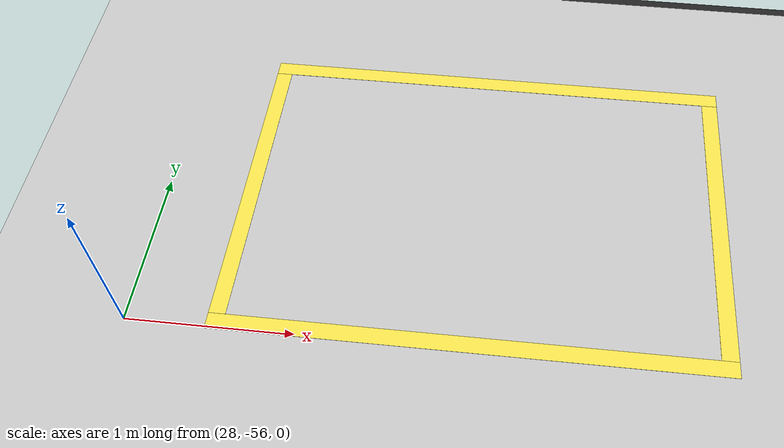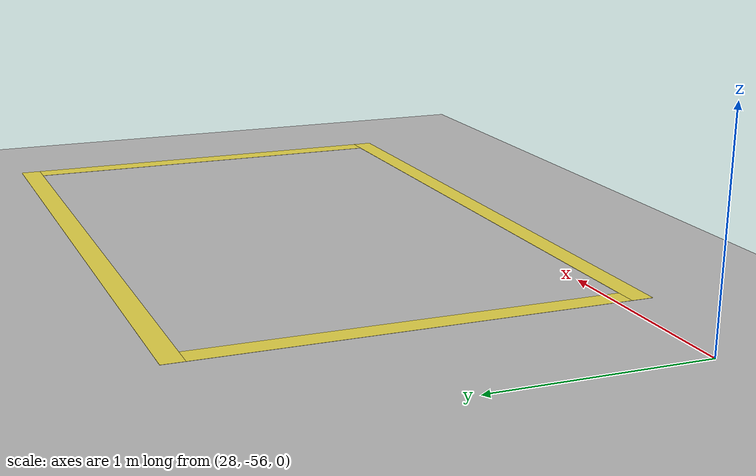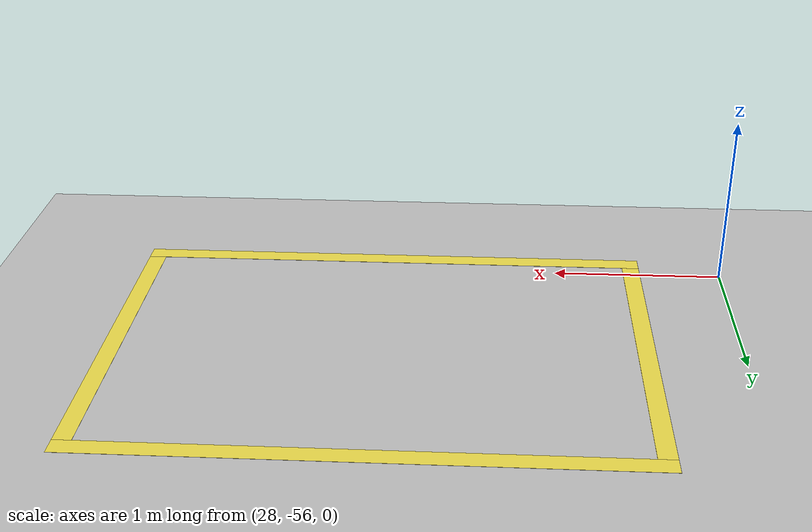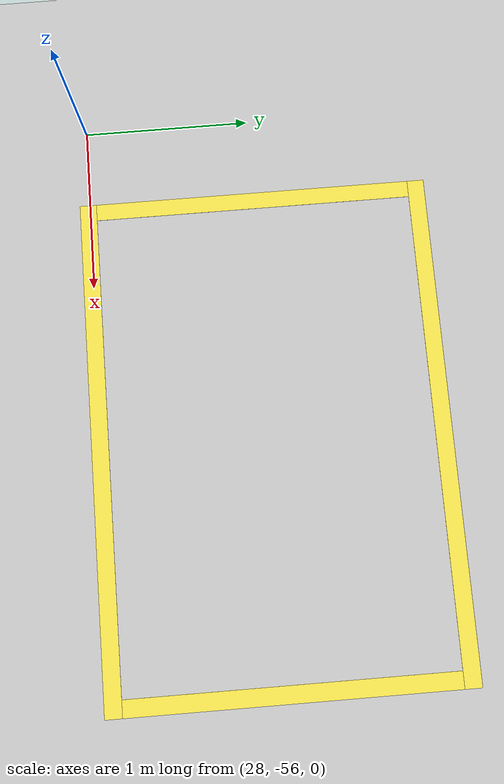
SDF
<sdf version="1.7">
 <world name="default">
  <model name="ground_plane">
   <static>1</static>
   <link name="link">
    <collision name="collision">
     <geometry><plane><normal>0 0 1</normal><size>100 100</size></plane></geometry>
     <surface>
      <contact><collide_bitmask>65535</collide_bitmask></contact>
      <friction><ode><mu>100</mu><mu2>50</mu2></ode></friction>
     </surface>
    </collision>
    <visual name="visual">
     <cast_shadows>0</cast_shadows>
     <geometry><plane><normal>0 0 1</normal><size>100 100</size></plane></geometry>
     <material>
      <script><uri>file://media/materials/scripts/gazebo.material</uri><name>Gazebo/Grey</name></script>
     </material>
    </visual>
   </link>
  </model>
  <model name="asphalt_plane">
   <link name="link">
    <inertial>
     <mass>1</mass>
     <inertia><ixx>1</ixx><ixy>0</ixy><ixz>0</ixz><iyy>1</iyy><iyz>0</iyz><izz>1</izz></inertia>
    </inertial>
    <visual name="visual">
     <cast_shadows>0</cast_shadows>
     <geometry><box><size>50 50 0.1</size></box></geometry>
     <material>
      <script>
       <uri>model://asphalt_plane/materials/scripts</uri>
       <uri>model://asphalt_plane/materials/textures</uri>
       <name>vrc/asphalt</name>
      </script>
      <shader type="pixel"><normal_map>__default__</normal_map></shader>
      <ambient>0.5 0.5 0.5 1</ambient>
      <diffuse>0.5 0.5 0.5 1</diffuse>
      <specular>0.2 0.2 0.2 1</specular>
      <emissive>0 0 0 1</emissive>
     </material>
    </visual>
    <collision name="collision">
     <geometry><box><size>50 50 0.1</size></box></geometry>
     <surface>
      <friction>
       <ode><mu>1</mu><mu2>1</mu2><fdir1>0 0 0</fdir1><slip1>0</slip1><slip2>0</slip2></ode>
       <torsional>
        <coefficient>1</coefficient>
        <patch_radius>0</patch_radius>
        <surface_radius>0</surface_radius>
        <use_patch_radius>1</use_patch_radius>
        <ode><slip>0</slip></ode>
       </torsional>
      </friction>
      <bounce><restitution_coefficient>0</restitution_coefficient><threshold>1e+06</threshold></bounce>
      <contact>
       <collide_without_contact>0</collide_without_contact>
       <collide_without_contact_bitmask>1</collide_without_contact_bitmask>
       <collide_bitmask>1</collide_bitmask>
       <ode>
        <soft_cfm>0</soft_cfm>
        <soft_erp>0.2</soft_erp>
        <kp>1e+13</kp>
        <kd>1</kd>
        <max_vel>0.01</max_vel>
        <min_depth>0</min_depth>
       </ode>
       <bullet>
        <split_impulse>1</split_impulse>
        <split_impulse_penetration_threshold>-0.01</split_impulse_penetration_threshold>
        <soft_cfm>0</soft_cfm>
        <soft_erp>0.2</soft_erp>
        <kp>1e+13</kp>
        <kd>1</kd>
       </bullet>
      </contact>
     </surface>
    </collision>
   </link>
   <static>1</static>
   <pose>25 25 0 0 -0 0</pose>
  </model>
  <model name="agv_marking_big_clone_6_clone_clone_1">
   <link name="link_0">
    <inertial>
     <mass>1</mass>
     <inertia>
      <ixx>0.166667</ixx>
      <ixy>0</ixy>
      <ixz>0</ixz>
      <iyy>0.166667</iyy>
      <iyz>0</iyz>
      <izz>0.166667</izz>
     </inertia>
    </inertial>
    <pose>0 1 0 0 -0 0</pose>
    <visual name="visual">
     <geometry><box><size>3 0.1 0.001</size></box></geometry>
     <material>
      <lighting>1</lighting>
      <script><uri>file://media/materials/scripts/gazebo.material</uri><name>Gazebo/Grey</name></script>
      <shader type="pixel"><normal_map>__default__</normal_map></shader>
      <ambient>0.988 0.914 0.31 1</ambient>
      <diffuse>0.7 0.7 0.7 1</diffuse>
      <specular>0.01 0.01 0.01 1</specular>
      <emissive>0 0 0 1</emissive>
     </material>
    </visual>
    <collision name="collision">
     <geometry><box><size>3 0.1 0.001</size></box></geometry>
     <surface>
      <friction>
       <ode><mu>1</mu><mu2>1</mu2><fdir1>0 0 0</fdir1><slip1>0</slip1><slip2>0</slip2></ode>
       <torsional>
        <coefficient>1</coefficient>
        <patch_radius>0</patch_radius>
        <surface_radius>0</surface_radius>
        <use_patch_radius>1</use_patch_radius>
        <ode><slip>0</slip></ode>
       </torsional>
      </friction>
      <bounce><restitution_coefficient>0</restitution_coefficient><threshold>1e+06</threshold></bounce>
      <contact>
       <collide_without_contact>0</collide_without_contact>
       <collide_without_contact_bitmask>1</collide_without_contact_bitmask>
       <collide_bitmask>1</collide_bitmask>
       <ode>
        <soft_cfm>0</soft_cfm>
        <soft_erp>0.2</soft_erp>
        <kp>1e+13</kp>
        <kd>1</kd>
        <max_vel>0.01</max_vel>
        <min_depth>0</min_depth>
       </ode>
       <bullet>
        <split_impulse>1</split_impulse>
        <split_impulse_penetration_threshold>-0.01</split_impulse_penetration_threshold>
        <soft_cfm>0</soft_cfm>
        <soft_erp>0.2</soft_erp>
        <kp>1e+13</kp>
        <kd>1</kd>
       </bullet>
      </contact>
     </surface>
    </collision>
   </link>
   <link name="link_0_clone">
    <inertial>
     <mass>1</mass>
     <inertia>
      <ixx>0.166667</ixx>
      <ixy>0</ixy>
      <ixz>0</ixz>
      <iyy>0.166667</iyy>
      <iyz>0</iyz>
      <izz>0.166667</izz>
     </inertia>
    </inertial>
    <pose>0 -1 0 0 -0 0</pose>
    <visual name="visual">
     <geometry><box><size>3 0.1 0.001</size></box></geometry>
     <material>
      <lighting>1</lighting>
      <script><uri>file://media/materials/scripts/gazebo.material</uri><name>Gazebo/Grey</name></script>
      <shader type="pixel"><normal_map>__default__</normal_map></shader>
      <ambient>0.988 0.914 0.31 1</ambient>
      <diffuse>0.7 0.7 0.7 1</diffuse>
      <specular>0.01 0.01 0.01 1</specular>
      <emissive>0 0 0 1</emissive>
     </material>
    </visual>
    <collision name="collision">
     <geometry><box><size>3 0.1 0.001</size></box></geometry>
     <surface>
      <friction>
       <ode><mu>1</mu><mu2>1</mu2><fdir1>0 0 0</fdir1><slip1>0</slip1><slip2>0</slip2></ode>
       <torsional>
        <coefficient>1</coefficient>
        <patch_radius>0</patch_radius>
        <surface_radius>0</surface_radius>
        <use_patch_radius>1</use_patch_radius>
        <ode><slip>0</slip></ode>
       </torsional>
      </friction>
      <bounce><restitution_coefficient>0</restitution_coefficient><threshold>1e+06</threshold></bounce>
      <contact>
       <collide_without_contact>0</collide_without_contact>
       <collide_without_contact_bitmask>1</collide_without_contact_bitmask>
       <collide_bitmask>1</collide_bitmask>
       <ode>
        <soft_cfm>0</soft_cfm>
        <soft_erp>0.2</soft_erp>
        <kp>1e+13</kp>
        <kd>1</kd>
        <max_vel>0.01</max_vel>
        <min_depth>0</min_depth>
       </ode>
       <bullet>
        <split_impulse>1</split_impulse>
        <split_impulse_penetration_threshold>-0.01</split_impulse_penetration_threshold>
        <soft_cfm>0</soft_cfm>
        <soft_erp>0.2</soft_erp>
        <kp>1e+13</kp>
        <kd>1</kd>
       </bullet>
      </contact>
     </surface>
    </collision>
   </link>
   <link name="link_1">
    <inertial>
     <mass>1</mass>
     <inertia>
      <ixx>0.166667</ixx>
      <ixy>0</ixy>
      <ixz>0</ixz>
      <iyy>0.166667</iyy>
      <iyz>0</iyz>
      <izz>0.166667</izz>
     </inertia>
    </inertial>
    <pose>-1.45 0 0 0 -0 0</pose>
    <visual name="visual">
     <geometry><box><size>0.1 1.9 0.001</size></box></geometry>
     <material>
      <lighting>1</lighting>
      <script><uri>file://media/materials/scripts/gazebo.material</uri><name>Gazebo/Grey</name></script>
      <shader type="pixel"><normal_map>__default__</normal_map></shader>
      <ambient>0.988 0.914 0.31 1</ambient>
      <diffuse>0.7 0.7 0.7 1</diffuse>
      <specular>0.01 0.01 0.01 1</specular>
      <emissive>0 0 0 1</emissive>
     </material>
    </visual>
    <collision name="collision">
     <geometry><box><size>0.1 1.9 0.001</size></box></geometry>
     <surface>
      <friction>
       <ode><mu>1</mu><mu2>1</mu2><fdir1>0 0 0</fdir1><slip1>0</slip1><slip2>0</slip2></ode>
       <torsional>
        <coefficient>1</coefficient>
        <patch_radius>0</patch_radius>
        <surface_radius>0</surface_radius>
        <use_patch_radius>1</use_patch_radius>
        <ode><slip>0</slip></ode>
       </torsional>
      </friction>
      <bounce><restitution_coefficient>0</restitution_coefficient><threshold>1e+06</threshold></bounce>
      <contact>
       <collide_without_contact>0</collide_without_contact>
       <collide_without_contact_bitmask>1</collide_without_contact_bitmask>
       <collide_bitmask>1</collide_bitmask>
       <ode>
        <soft_cfm>0</soft_cfm>
        <soft_erp>0.2</soft_erp>
        <kp>1e+13</kp>
        <kd>1</kd>
        <max_vel>0.01</max_vel>
        <min_depth>0</min_depth>
       </ode>
       <bullet>
        <split_impulse>1</split_impulse>
        <split_impulse_penetration_threshold>-0.01</split_impulse_penetration_threshold>
        <soft_cfm>0</soft_cfm>
        <soft_erp>0.2</soft_erp>
        <kp>1e+13</kp>
        <kd>1</kd>
       </bullet>
      </contact>
     </surface>
    </collision>
   </link>
   <link name="link_1_clone">
    <inertial>
     <mass>1</mass>
     <inertia>
      <ixx>0.166667</ixx>
      <ixy>0</ixy>
      <ixz>0</ixz>
      <iyy>0.166667</iyy>
      <iyz>0</iyz>
      <izz>0.166667</izz>
     </inertia>
    </inertial>
    <pose>1.45 0 0 0 -0 0</pose>
    <visual name="visual">
     <geometry><box><size>0.1 1.9 0.001</size></box></geometry>
     <material>
      <lighting>1</lighting>
      <script><uri>file://media/materials/scripts/gazebo.material</uri><name>Gazebo/Grey</name></script>
      <shader type="pixel"><normal_map>__default__</normal_map></shader>
      <ambient>0.988 0.914 0.31 1</ambient>
      <diffuse>0.7 0.7 0.7 1</diffuse>
      <specular>0.01 0.01 0.01 1</specular>
      <emissive>0 0 0 1</emissive>
     </material>
    </visual>
    <collision name="collision">
     <geometry><box><size>0.1 1.9 0.001</size></box></geometry>
     <surface>
      <friction>
       <ode><mu>1</mu><mu2>1</mu2><fdir1>0 0 0</fdir1><slip1>0</slip1><slip2>0</slip2></ode>
       <torsional>
        <coefficient>1</coefficient>
        <patch_radius>0</patch_radius>
        <surface_radius>0</surface_radius>
        <use_patch_radius>1</use_patch_radius>
        <ode><slip>0</slip></ode>
       </torsional>
      </friction>
      <bounce><restitution_coefficient>0</restitution_coefficient><threshold>1e+06</threshold></bounce>
      <contact>
       <collide_without_contact>0</collide_without_contact>
       <collide_without_contact_bitmask>1</collide_without_contact_bitmask>
       <collide_bitmask>1</collide_bitmask>
       <ode>
        <soft_cfm>0</soft_cfm>
        <soft_erp>0.2</soft_erp>
        <kp>1e+13</kp>
        <kd>1</kd>
        <max_vel>0.01</max_vel>
        <min_depth>0</min_depth>
       </ode>
       <bullet>
        <split_impulse>1</split_impulse>
        <split_impulse_penetration_threshold>-0.01</split_impulse_penetration_threshold>
        <soft_cfm>0</soft_cfm>
        <soft_erp>0.2</soft_erp>
        <kp>1e+13</kp>
        <kd>1</kd>
       </bullet>
      </contact>
     </surface>
    </collision>
   </link>
   <static>1</static>
   <pose>30 -55 0.075 0 -0 0</pose>
  </model>
 </world>
</sdf>
